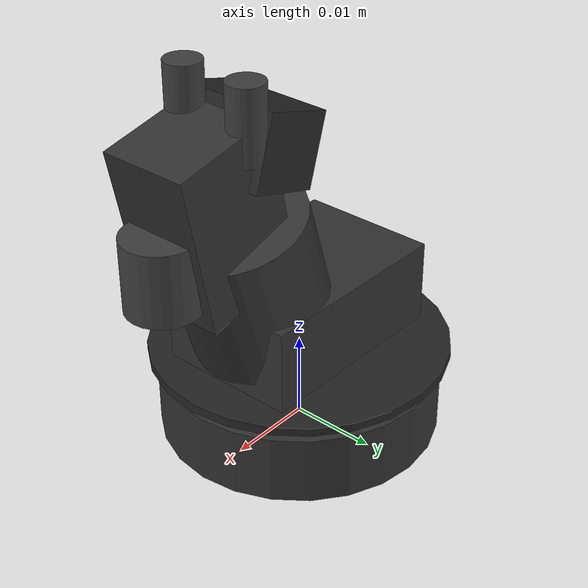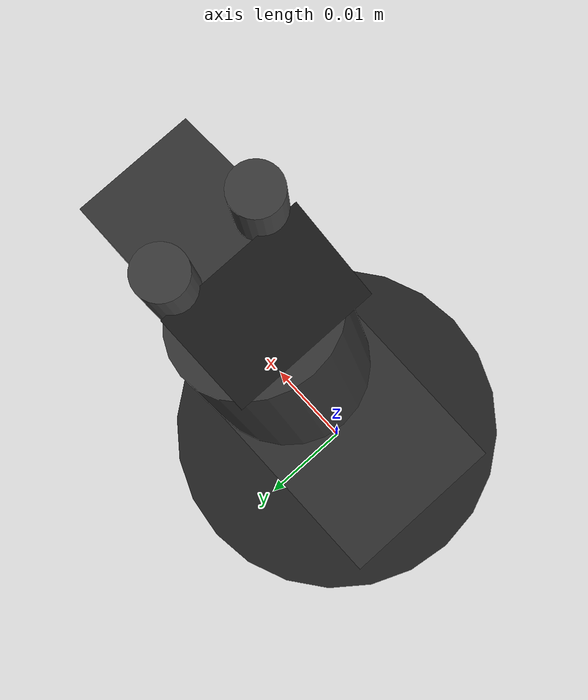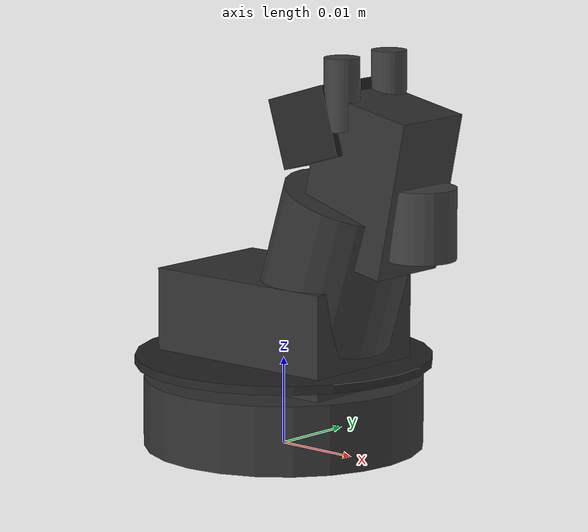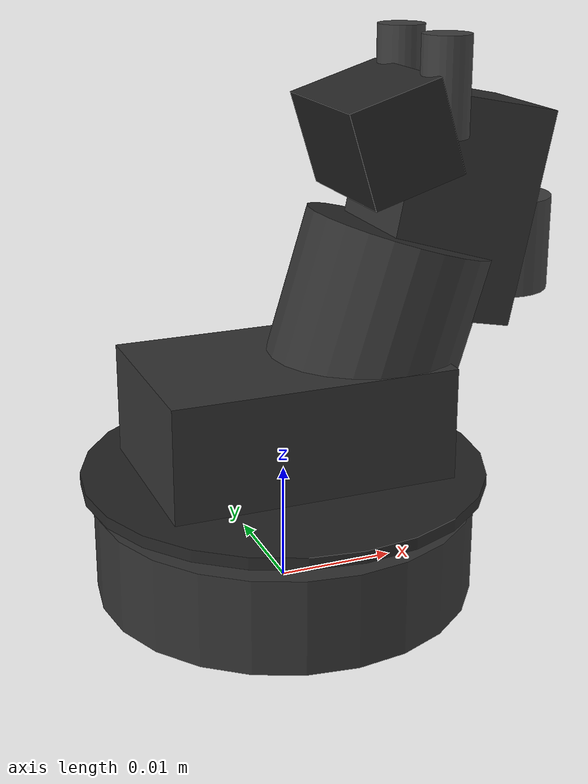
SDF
<?xml version="1.0" ?>
<sdf version="1.6">
  <model name="chess_knight_black">
    <link name="link">
      <pose>0 0 0 0 0 0</pose>

      <inertial>
        <mass>0.08</mass>
        <pose>0 0 0.020 0 0 0</pose>
        <inertia>
          <ixx>0.00003</ixx>
          <ixy>0</ixy>
          <ixz>0</ixz>
          <iyy>0.00003</iyy>
          <iyz>0</iyz>
          <izz>0.00001</izz>
        </inertia>
      </inertial>

      <!-- Base platform (horse body) -->
      <collision name="base_collision">
        <pose>0 0 0.004 0 0 0</pose>
        <geometry>
          <cylinder>
            <radius>0.016</radius>
            <length>0.008</length>
          </cylinder>
        </geometry>
        <surface>
          <friction>
            <ode>
              <mu>0.8</mu>
              <mu2>0.8</mu2>
            </ode>
          </friction>
          <bounce>
            <restitution_coefficient>0.1</restitution_coefficient>
          </bounce>
        </surface>
      </collision>

      <!-- Horse body/neck (elongated) -->
      <collision name="body_collision">
        <pose>0 0 0.014 0 0 0</pose>
        <geometry>
          <box>
            <size>0.024 0.016 0.012</size>  <!-- Rectangular horse body -->
          </box>
        </geometry>
      </collision>

      <!-- Horse neck -->
      <collision name="neck_collision">
        <pose>0.008 0 0.022 0 0.3 0</pose>  <!-- Angled forward -->
        <geometry>
          <cylinder>
            <radius>0.008</radius>
            <length>0.016</length>
          </cylinder>
        </geometry>
      </collision>

      <!-- Horse head -->
      <collision name="head_collision">
        <pose>0.014 0 0.032 0 0.2 0</pose>  <!-- Angled horse head -->
        <geometry>
          <box>
            <size>0.012 0.010 0.018</size>  <!-- Horse head shape -->
          </box>
        </geometry>
      </collision>

      <!-- Horse muzzle -->
      <collision name="muzzle_collision">
        <pose>0.020 0 0.028 0 0 0</pose>
        <geometry>
          <cylinder>
            <radius>0.004</radius>
            <length>0.008</length>
          </cylinder>
        </geometry>
      </collision>

      <!-- Horse ears -->
      <collision name="ear_1_collision">
        <pose>0.012 0.004 0.042 0 0 0.5</pose>
        <geometry>
          <cylinder>
            <radius>0.002</radius>
            <length>0.008</length>
          </cylinder>
        </geometry>
      </collision>

      <collision name="ear_2_collision">
        <pose>0.012 -0.004 0.042 0 0 -0.5</pose>
        <geometry>
          <cylinder>
            <radius>0.002</radius>
            <length>0.008</length>
          </cylinder>
        </geometry>
      </collision>

      <!-- Mane -->
      <collision name="mane_collision">
        <pose>0.008 0 0.038 0 -0.3 0</pose>
        <geometry>
          <box>
            <size>0.008 0.012 0.008</size>
          </box>
        </geometry>
      </collision>

      <!-- Visuals (BLACK colors) -->
      <visual name="base_visual">
        <pose>0 0 0.004 0 0 0</pose>
        <geometry>
          <cylinder>
            <radius>0.016</radius>
            <length>0.008</length>
          </cylinder>
        </geometry>
        <material>
          <ambient>0.1 0.1 0.1 1</ambient>
          <diffuse>0.2 0.2 0.2 1</diffuse>
          <specular>0.4 0.4 0.4 1</specular>
        </material>
      </visual>

      <visual name="body_visual">
        <pose>0 0 0.014 0 0 0</pose>
        <geometry>
          <box>
            <size>0.024 0.016 0.012</size>
          </box>
        </geometry>
        <material>
          <ambient>0.1 0.1 0.1 1</ambient>
          <diffuse>0.2 0.2 0.2 1</diffuse>
          <specular>0.4 0.4 0.4 1</specular>
        </material>
      </visual>

      <visual name="neck_visual">
        <pose>0.008 0 0.022 0 0.3 0</pose>
        <geometry>
          <cylinder>
            <radius>0.008</radius>
            <length>0.016</length>
          </cylinder>
        </geometry>
        <material>
          <ambient>0.1 0.1 0.1 1</ambient>
          <diffuse>0.2 0.2 0.2 1</diffuse>
          <specular>0.4 0.4 0.4 1</specular>
        </material>
      </visual>

      <visual name="head_visual">
        <pose>0.014 0 0.032 0 0.2 0</pose>
        <geometry>
          <box>
            <size>0.012 0.010 0.018</size>
          </box>
        </geometry>
        <material>
          <ambient>0.1 0.1 0.1 1</ambient>
          <diffuse>0.2 0.2 0.2 1</diffuse>
          <specular>0.4 0.4 0.4 1</specular>
        </material>
      </visual>

      <visual name="muzzle_visual">
        <pose>0.020 0 0.028 0 0 0</pose>
        <geometry>
          <cylinder>
            <radius>0.004</radius>
            <length>0.008</length>
          </cylinder>
        </geometry>
        <material>
          <ambient>0.15 0.15 0.15 1</ambient>
          <diffuse>0.25 0.25 0.25 1</diffuse>
          <specular>0.5 0.5 0.5 1</specular>
        </material>
      </visual>

      <visual name="ear_1_visual">
        <pose>0.012 0.004 0.042 0 0 0.5</pose>
        <geometry>
          <cylinder>
            <radius>0.002</radius>
            <length>0.008</length>
          </cylinder>
        </geometry>
        <material>
          <ambient>0.15 0.15 0.15 1</ambient>
          <diffuse>0.25 0.25 0.25 1</diffuse>
          <specular>0.5 0.5 0.5 1</specular>
        </material>
      </visual>

      <visual name="ear_2_visual">
        <pose>0.012 -0.004 0.042 0 0 -0.5</pose>
        <geometry>
          <cylinder>
            <radius>0.002</radius>
            <length>0.008</length>
          </cylinder>
        </geometry>
        <material>
          <ambient>0.15 0.15 0.15 1</ambient>
          <diffuse>0.25 0.25 0.25 1</diffuse>
          <specular>0.5 0.5 0.5 1</specular>
        </material>
      </visual>

      <visual name="mane_visual">
        <pose>0.008 0 0.038 0 -0.3 0</pose>
        <geometry>
          <box>
            <size>0.008 0.012 0.008</size>
          </box>
        </geometry>
        <material>
          <ambient>0.05 0.05 0.05 1</ambient>
          <diffuse>0.15 0.15 0.15 1</diffuse>
          <specular>0.3 0.3 0.3 1</specular>
        </material>
      </visual>

      <!-- Horse eyes (bright for contrast) -->
      <visual name="eye_1_visual">
        <pose>0.018 0.003 0.035 0 0 0</pose>
        <geometry>
          <sphere>
            <radius>0.001</radius>
          </sphere>
        </geometry>
        <material>
          <ambient>0.9 0.9 0.9 1</ambient>
          <diffuse>1.0 1.0 1.0 1</diffuse>
          <specular>0.8 0.8 0.8 1</specular>
        </material>
      </visual>

      <visual name="eye_2_visual">
        <pose>0.018 -0.003 0.035 0 0 0</pose>
        <geometry>
          <sphere>
            <radius>0.001</radius>
          </sphere>
        </geometry>
        <material>
          <ambient>0.9 0.9 0.9 1</ambient>
          <diffuse>1.0 1.0 1.0 1</diffuse>
          <specular>0.8 0.8 0.8 1</specular>
        </material>
      </visual>

      <!-- Decorative band -->
      <visual name="band_visual">
        <pose>0 0 0.010 0 0 0</pose>
        <geometry>
          <cylinder>
            <radius>0.017</radius>
            <length>0.001</length>
          </cylinder>
        </geometry>
        <material>
          <ambient>0.05 0.05 0.05 1</ambient>
          <diffuse>0.15 0.15 0.15 1</diffuse>
          <specular>0.3 0.3 0.3 1</specular>
        </material>
      </visual>
    </link>
  </model>
</sdf>
